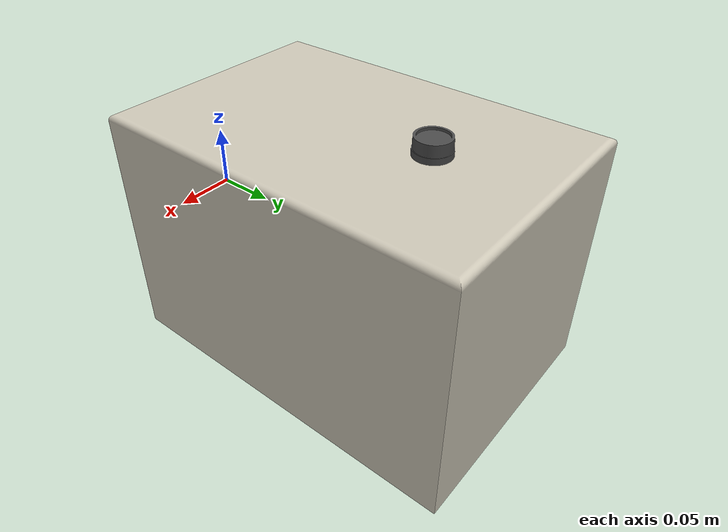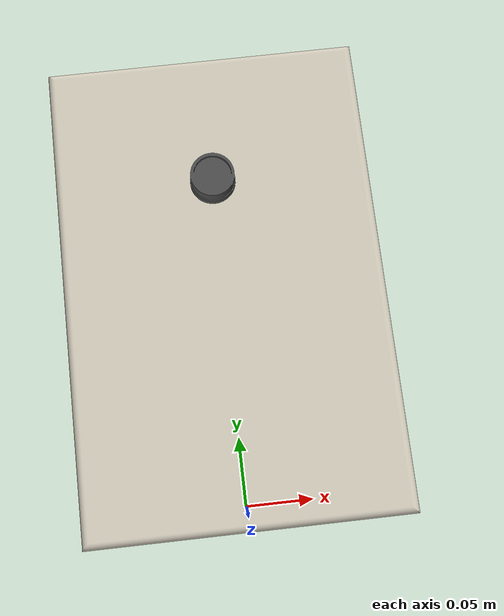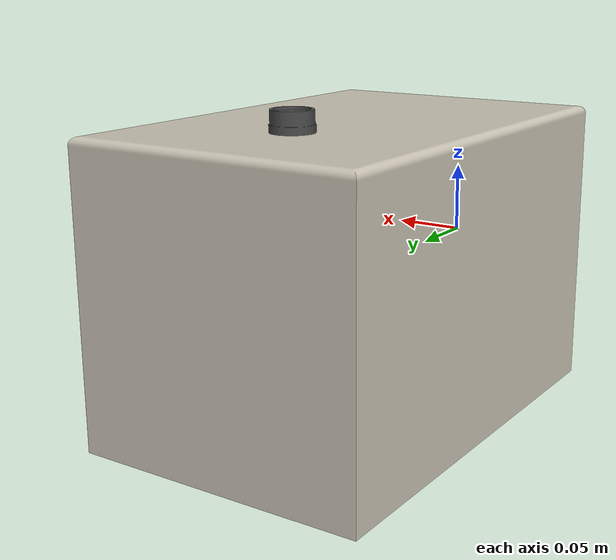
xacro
<?xml version="1.0"?>

<robot name="caixa" xmlns:xacro="http://ros.org/wiki/xacro">

  <link name="caixa">
    <visual>
      <origin rpy="-1.571 0 0" xyz="0 0 0"/> <!-- vertical : rpy="0 0 0" xyz="0 0 0"--> <!-- horizontal: rpy="-1.571 0 0" xyz="0 0 0"-->
      <geometry>
        <mesh filename="package://manipulator_description/meshes/caixa.dae"/>
      </geometry>
    </visual>
    <collision>
      <origin rpy="-1.571 0 0" xyz="0 0 0"/> <!-- vertical : rpy="0 0 0" xyz="0 0 0"--> <!-- horizontal: rpy="-1.571 0 0" xyz="0 0 0"-->
      <geometry>
        <mesh filename="package://manipulator_description/meshes/caixa.stl"/>
      </geometry>
    </collision>
    <inertial>
      <origin rpy="-1.571 0 0" xyz="0 0 0"/> <!-- vertical : rpy="0 0 0" xyz="0 0 0"--> <!-- horizontal: rpy="-1.571 0 0" xyz="0 0 0"-->
      <mass value="7.83641898"/>
      <inertia ixx="1.14439574e-1" ixy="0" ixz="-4.92675504e-9" iyx="0" iyy="1.11258168e-1" iyz="-1.02434023e-3" izx="-4.92675504e-9" izy="-1.02434023e-3" izz="8.62491763e-2"/>
    </inertial>
  </link>

</robot>
